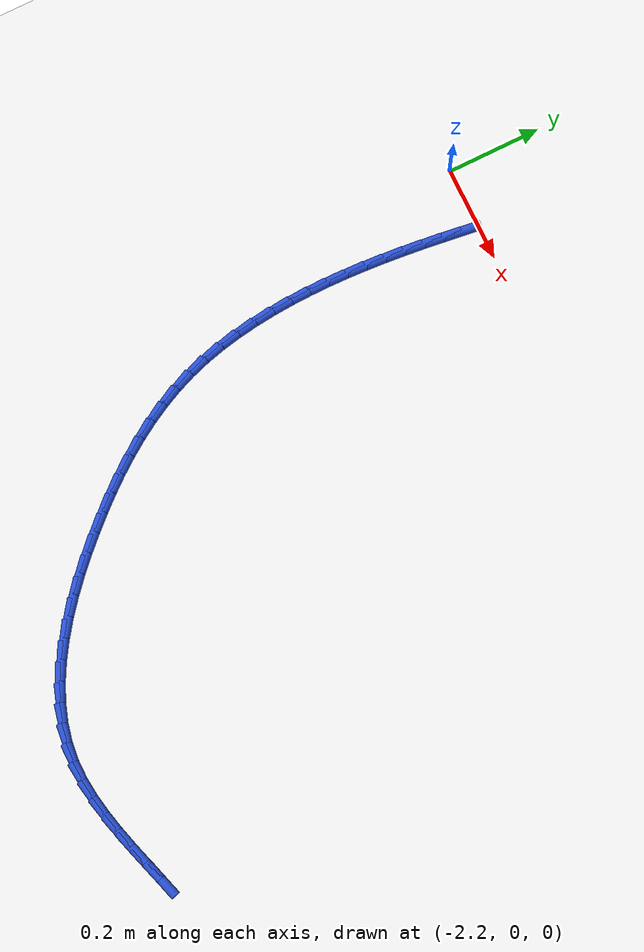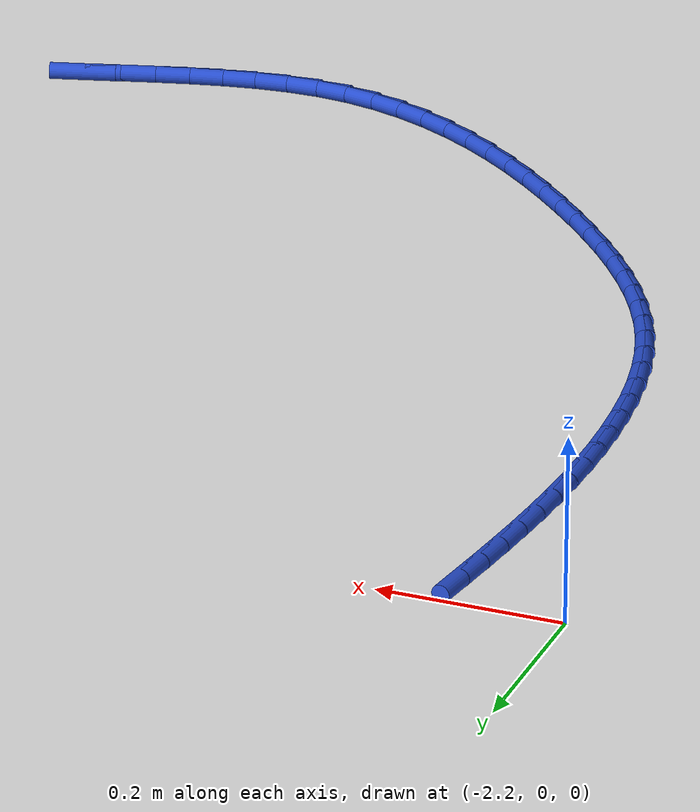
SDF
<sdf version="1.6">
 <world name="default">
  <model name="ground_plane">
   <static>1</static>
   <link name="link">
    <collision name="collision">
     <geometry><plane><normal>0 0 1</normal><size>100 100</size></plane></geometry>
     <surface><friction><ode><mu>100</mu><mu2>50</mu2></ode></friction></surface>
    </collision>
    <visual name="visual">
     <cast_shadows>0</cast_shadows>
     <geometry><plane><normal>0 0 1</normal><size>100 100</size></plane></geometry>
     <material>
      <script><uri>file://media/materials/scripts/gazebo.material</uri><name>Gazebo/WhiteGlow</name></script>
     </material>
    </visual>
   </link>
  </model>
  <model name="line">
   <link name="link_85">
    <pose>-2.0759459259021007 -0.03495912147742601 0.01 0 1.57 1.4429715660285354</pose>
    <collision name="collision">
     <geometry><cylinder><radius>0.01</radius><length>0.08</length></cylinder></geometry>
    </collision>
    <visual name="visual">
     <material>
      <script><name>Gazebo/Blue</name><uri>file://media/materials/scripts/gazebo.material</uri></script>
     </material>
     <geometry><cylinder><radius>0.01</radius><length>0.08</length></cylinder></geometry>
    </visual>
   </link>
   <link name="link_86">
    <pose>-2.081234649472552 -0.07610832968822191 0.01 0 1.57 1.4531699177430342</pose>
    <collision name="collision">
     <geometry><cylinder><radius>0.01</radius><length>0.08</length></cylinder></geometry>
    </collision>
    <visual name="visual">
     <material>
      <script><name>Gazebo/Blue</name><uri>file://media/materials/scripts/gazebo.material</uri></script>
     </material>
     <geometry><cylinder><radius>0.01</radius><length>0.08</length></cylinder></geometry>
    </visual>
   </link>
   <link name="link_87">
    <pose>-2.0860976702695737 -0.11726041376785132 0.01 0 1.57 1.4663766886337397</pose>
    <collision name="collision">
     <geometry><cylinder><radius>0.01</radius><length>0.08</length></cylinder></geometry>
    </collision>
    <visual name="visual">
     <material>
      <script><name>Gazebo/Blue</name><uri>file://media/materials/scripts/gazebo.material</uri></script>
     </material>
     <geometry><cylinder><radius>0.01</radius><length>0.08</length></cylinder></geometry>
    </visual>
   </link>
   <link name="link_88">
    <pose>-2.090412092521287 -0.15842824585336465 0.01 0 1.57 1.4825975452737543</pose>
    <collision name="collision">
     <geometry><cylinder><radius>0.01</radius><length>0.08</length></cylinder></geometry>
    </collision>
    <visual name="visual">
     <material>
      <script><name>Gazebo/Blue</name><uri>file://media/materials/scripts/gazebo.material</uri></script>
     </material>
     <geometry><cylinder><radius>0.01</radius><length>0.08</length></cylinder></geometry>
    </visual>
   </link>
   <link name="link_89">
    <pose>-2.0940550204558144 -0.1996246980818131 0.01 0 1.57 1.501830226326414</pose>
    <collision name="collision">
     <geometry><cylinder><radius>0.01</radius><length>0.08</length></cylinder></geometry>
    </collision>
    <visual name="visual">
     <material>
      <script><name>Gazebo/Blue</name><uri>file://media/materials/scripts/gazebo.material</uri></script>
     </material>
     <geometry><cylinder><radius>0.01</radius><length>0.08</length></cylinder></geometry>
    </visual>
   </link>
   <link name="link_90">
    <pose>-2.096903558301279 -0.24086264259024567 0.01 0 1.57 1.5240601257181803</pose>
    <collision name="collision">
     <geometry><cylinder><radius>0.01</radius><length>0.08</length></cylinder></geometry>
    </collision>
    <visual name="visual">
     <material>
      <script><name>Gazebo/Blue</name><uri>file://media/materials/scripts/gazebo.material</uri></script>
     </material>
     <geometry><cylinder><radius>0.01</radius><length>0.08</length></cylinder></geometry>
    </visual>
   </link>
   <link name="link_91">
    <pose>-2.098834810285803 -0.28215495151571346 0.01 0 1.57 1.5492551683550988</pose>
    <collision name="collision">
     <geometry><cylinder><radius>0.01</radius><length>0.08</length></cylinder></geometry>
    </collision>
    <visual name="visual">
     <material>
      <script><name>Gazebo/Blue</name><uri>file://media/materials/scripts/gazebo.material</uri></script>
     </material>
     <geometry><cylinder><radius>0.01</radius><length>0.08</length></cylinder></geometry>
    </visual>
   </link>
   <link name="link_92">
    <pose>-2.099725880637509 -0.3235144969952671 0.01 0 1.57 -1.564232489522545</pose>
    <collision name="collision">
     <geometry><cylinder><radius>0.01</radius><length>0.08</length></cylinder></geometry>
    </collision>
    <visual name="visual">
     <material>
      <script><name>Gazebo/Blue</name><uri>file://media/materials/scripts/gazebo.material</uri></script>
     </material>
     <geometry><cylinder><radius>0.01</radius><length>0.08</length></cylinder></geometry>
    </visual>
   </link>
   <link name="link_93">
    <pose>-2.0994538735845185 -0.3649541511659569 0.01 0 1.57 -1.5333017139982261</pose>
    <collision name="collision">
     <geometry><cylinder><radius>0.01</radius><length>0.08</length></cylinder></geometry>
    </collision>
    <visual name="visual">
     <material>
      <script><name>Gazebo/Blue</name><uri>file://media/materials/scripts/gazebo.material</uri></script>
     </material>
     <geometry><cylinder><radius>0.01</radius><length>0.08</length></cylinder></geometry>
    </visual>
   </link>
   <link name="link_94">
    <pose>-2.0978958933549556 -0.40648678616483436 0.01 0 1.57 -1.4995653418107655</pose>
    <collision name="collision">
     <geometry><cylinder><radius>0.01</radius><length>0.08</length></cylinder></geometry>
    </collision>
    <visual name="visual">
     <material>
      <script><name>Gazebo/Blue</name><uri>file://media/materials/scripts/gazebo.material</uri></script>
     </material>
     <geometry><cylinder><radius>0.01</radius><length>0.08</length></cylinder></geometry>
    </visual>
   </link>
   <link name="link_95">
    <pose>-2.0949257542148065 -0.4481135317558198 0.01 0 1.57 -1.461850985884746</pose>
    <collision name="collision">
     <geometry><cylinder><radius>0.01</radius><length>0.08</length></cylinder></geometry>
    </collision>
    <visual name="visual">
     <material>
      <script><name>Gazebo/Blue</name><uri>file://media/materials/scripts/gazebo.material</uri></script>
     </material>
     <geometry><cylinder><radius>0.01</radius><length>0.08</length></cylinder></geometry>
    </visual>
   </link>
   <link name="link_96">
    <pose>-2.090377712195463 -0.48969432837239396 0.01 0 1.57 -1.4190037425827233</pose>
    <collision name="collision">
     <geometry><cylinder><radius>0.01</radius><length>0.08</length></cylinder></geometry>
    </collision>
    <visual name="visual">
     <material>
      <script><name>Gazebo/Blue</name><uri>file://media/materials/scripts/gazebo.material</uri></script>
     </material>
     <geometry><cylinder><radius>0.01</radius><length>0.08</length></cylinder></geometry>
    </visual>
   </link>
   <link name="link_97">
    <pose>-2.084059864550111 -0.5309957518068278 0.01 0 1.57 -1.370511517928132</pose>
    <collision name="collision">
     <geometry><cylinder><radius>0.01</radius><length>0.08</length></cylinder></geometry>
    </collision>
    <visual name="visual">
     <material>
      <script><name>Gazebo/Blue</name><uri>file://media/materials/scripts/gazebo.material</uri></script>
     </material>
     <geometry><cylinder><radius>0.01</radius><length>0.08</length></cylinder></geometry>
    </visual>
   </link>
   <link name="link_98">
    <pose>-2.0757798430028362 -0.5717827163075342 0.01 0 1.57 -1.315847348142498</pose>
    <collision name="collision">
     <geometry><cylinder><radius>0.01</radius><length>0.08</length></cylinder></geometry>
    </collision>
    <visual name="visual">
     <material>
      <script><name>Gazebo/Blue</name><uri>file://media/materials/scripts/gazebo.material</uri></script>
     </material>
     <geometry><cylinder><radius>0.01</radius><length>0.08</length></cylinder></geometry>
    </visual>
   </link>
   <link name="link_99">
    <pose>-2.065345279277726 -0.6118201361229267 0.01 0 1.57 -1.2545188756909045</pose>
    <collision name="collision">
     <geometry><cylinder><radius>0.01</radius><length>0.08</length></cylinder></geometry>
    </collision>
    <visual name="visual">
     <material>
      <script><name>Gazebo/Blue</name><uri>file://media/materials/scripts/gazebo.material</uri></script>
     </material>
     <geometry><cylinder><radius>0.01</radius><length>0.08</length></cylinder></geometry>
    </visual>
   </link>
   <link name="link_100">
    <pose>-2.0525645168437685 -0.650873612082551 0.01 0 1.57 -1.1893075918681044</pose>
    <collision name="collision">
     <geometry><cylinder><radius>0.01</radius><length>0.08</length></cylinder></geometry>
    </collision>
    <visual name="visual">
     <material>
      <script><name>Gazebo/Blue</name><uri>file://media/materials/scripts/gazebo.material</uri></script>
     </material>
     <geometry><cylinder><radius>0.01</radius><length>0.08</length></cylinder></geometry>
    </visual>
   </link>
   <link name="link_101">
    <pose>-2.0373478727783203 -0.6888071133437073 0.01 0 1.57 -1.12694426555533</pose>
    <collision name="collision">
     <geometry><cylinder><radius>0.01</radius><length>0.08</length></cylinder></geometry>
    </collision>
    <visual name="visual">
     <material>
      <script><name>Gazebo/Blue</name><uri>file://media/materials/scripts/gazebo.material</uri></script>
     </material>
     <geometry><cylinder><radius>0.01</radius><length>0.08</length></cylinder></geometry>
    </visual>
   </link>
   <link name="link_102">
    <pose>-2.019812868827195 -0.725684488003593 0.01 0 1.57 -1.0687966029367555</pose>
    <collision name="collision">
     <geometry><cylinder><radius>0.01</radius><length>0.08</length></cylinder></geometry>
    </collision>
    <visual name="visual">
     <material>
      <script><name>Gazebo/Blue</name><uri>file://media/materials/scripts/gazebo.material</uri></script>
     </material>
     <geometry><cylinder><radius>0.01</radius><length>0.08</length></cylinder></geometry>
    </visual>
   </link>
   <link name="link_103">
    <pose>-2.0001021630021807 -0.7615938317317879 0.01 0 1.57 -1.0152746016147878</pose>
    <collision name="collision">
     <geometry><cylinder><radius>0.01</radius><length>0.08</length></cylinder></geometry>
    </collision>
    <visual name="visual">
     <material>
      <script><name>Gazebo/Blue</name><uri>file://media/materials/scripts/gazebo.material</uri></script>
     </material>
     <geometry><cylinder><radius>0.01</radius><length>0.08</length></cylinder></geometry>
    </visual>
   </link>
   <link name="link_104">
    <pose>-1.9783584133150642 -0.7966232401978701 0.01 0 1.57 -0.9666112911709851</pose>
    <collision name="collision">
     <geometry><cylinder><radius>0.01</radius><length>0.08</length></cylinder></geometry>
    </collision>
    <visual name="visual">
     <material>
      <script><name>Gazebo/Blue</name><uri>file://media/materials/scripts/gazebo.material</uri></script>
     </material>
     <geometry><cylinder><radius>0.01</radius><length>0.08</length></cylinder></geometry>
    </visual>
   </link>
   <link name="link_105">
    <pose>-1.954724277777634 -0.8308608090714177 0.01 0 1.57 -0.9228917143490526</pose>
    <collision name="collision">
     <geometry><cylinder><radius>0.01</radius><length>0.08</length></cylinder></geometry>
    </collision>
    <visual name="visual">
     <material>
      <script><name>Gazebo/Blue</name><uri>file://media/materials/scripts/gazebo.material</uri></script>
     </material>
     <geometry><cylinder><radius>0.01</radius><length>0.08</length></cylinder></geometry>
    </visual>
   </link>
   <link name="link_106">
    <pose>-1.9293424144016778 -0.8643946340220098 0.01 0 1.57 -0.8840871595854837</pose>
    <collision name="collision">
     <geometry><cylinder><radius>0.01</radius><length>0.08</length></cylinder></geometry>
    </collision>
    <visual name="visual">
     <material>
      <script><name>Gazebo/Blue</name><uri>file://media/materials/scripts/gazebo.material</uri></script>
     </material>
     <geometry><cylinder><radius>0.01</radius><length>0.08</length></cylinder></geometry>
    </visual>
   </link>
   <link name="link_107">
    <pose>-1.9023554811989831 -0.8973128107192248 0.01 0 1.57 -0.8500888541328554</pose>
    <collision name="collision">
     <geometry><cylinder><radius>0.01</radius><length>0.08</length></cylinder></geometry>
    </collision>
    <visual name="visual">
     <material>
      <script><name>Gazebo/Blue</name><uri>file://media/materials/scripts/gazebo.material</uri></script>
     </material>
     <geometry><cylinder><radius>0.01</radius><length>0.08</length></cylinder></geometry>
    </visual>
   </link>
   <link name="link_108">
    <pose>-1.873906136181339 -0.9297034348326422 0.01 0 1.57 -0.8206850880190047</pose>
    <collision name="collision">
     <geometry><cylinder><radius>0.01</radius><length>0.08</length></cylinder></geometry>
    </collision>
    <visual name="visual">
     <material>
      <script><name>Gazebo/Blue</name><uri>file://media/materials/scripts/gazebo.material</uri></script>
     </material>
     <geometry><cylinder><radius>0.01</radius><length>0.08</length></cylinder></geometry>
    </visual>
   </link>
   <link name="link_109">
    <pose>-1.8441366071570893 -0.9616516993572874 0.01 0 1.57 -0.7924468188744641</pose>
    <collision name="collision">
     <geometry><cylinder><radius>0.01</radius><length>0.08</length></cylinder></geometry>
    </collision>
    <visual name="visual">
     <material>
      <script><name>Gazebo/Blue</name><uri>file://media/materials/scripts/gazebo.material</uri></script>
     </material>
     <geometry><cylinder><radius>0.01</radius><length>0.08</length></cylinder></geometry>
    </visual>
   </link>
   <link name="link_110">
    <pose>-1.8131628081549598 -0.993065252594348 0.01 0 1.57 -0.7599471058321466</pose>
    <collision name="collision">
     <geometry><cylinder><radius>0.01</radius><length>0.08</length></cylinder></geometry>
    </collision>
    <visual name="visual">
     <material>
      <script><name>Gazebo/Blue</name><uri>file://media/materials/scripts/gazebo.material</uri></script>
     </material>
     <geometry><cylinder><radius>0.01</radius><length>0.08</length></cylinder></geometry>
    </visual>
   </link>
   <link name="link_111">
    <pose>-1.7810595757963186 -1.0235745848001148 0.01 0 1.57 -0.7221559695129879</pose>
    <collision name="collision">
     <geometry><cylinder><radius>0.01</radius><length>0.08</length></cylinder></geometry>
    </collision>
    <visual name="visual">
     <material>
      <script><name>Gazebo/Blue</name><uri>file://media/materials/scripts/gazebo.material</uri></script>
     </material>
     <geometry><cylinder><radius>0.01</radius><length>0.08</length></cylinder></geometry>
    </visual>
   </link>
   <link name="link_112">
    <pose>-1.7478981789248766 -1.0527861136726644 0.01 0 1.57 -0.6783287721434816</pose>
    <collision name="collision">
     <geometry><cylinder><radius>0.01</radius><length>0.08</length></cylinder></geometry>
    </collision>
    <visual name="visual">
     <material>
      <script><name>Gazebo/Blue</name><uri>file://media/materials/scripts/gazebo.material</uri></script>
     </material>
     <geometry><cylinder><radius>0.01</radius><length>0.08</length></cylinder></geometry>
    </visual>
   </link>
   <link name="link_113">
    <pose>-1.7137498863843434 -1.0803062569100734 0.01 0 1.57 -0.6275667458564074</pose>
    <collision name="collision">
     <geometry><cylinder><radius>0.01</radius><length>0.08</length></cylinder></geometry>
    </collision>
    <visual name="visual">
     <material>
      <script><name>Gazebo/Blue</name><uri>file://media/materials/scripts/gazebo.material</uri></script>
     </material>
     <geometry><cylinder><radius>0.01</radius><length>0.08</length></cylinder></geometry>
    </visual>
   </link>
   <link name="link_114">
    <pose>-1.6786859670184304 -1.105741432210417 0.01 0 1.57 -0.5688255984747911</pose>
    <collision name="collision">
     <geometry><cylinder><radius>0.01</radius><length>0.08</length></cylinder></geometry>
    </collision>
    <visual name="visual">
     <material>
      <script><name>Gazebo/Blue</name><uri>file://media/materials/scripts/gazebo.material</uri></script>
     </material>
     <geometry><cylinder><radius>0.01</radius><length>0.08</length></cylinder></geometry>
    </visual>
   </link>
   <link name="link_115">
    <pose>-1.6427776896708466 -1.1286980572717724 0.01 0 1.57 -0.5009520936265446</pose>
    <collision name="collision">
     <geometry><cylinder><radius>0.01</radius><length>0.08</length></cylinder></geometry>
    </collision>
    <visual name="visual">
     <material>
      <script><name>Gazebo/Blue</name><uri>file://media/materials/scripts/gazebo.material</uri></script>
     </material>
     <geometry><cylinder><radius>0.01</radius><length>0.08</length></cylinder></geometry>
    </visual>
   </link>
   <link name="link_116">
    <pose>-1.6060963231853038 -1.1487825497922142 0.01 0 1.57 -0.4227725859736441</pose>
    <collision name="collision">
     <geometry><cylinder><radius>0.01</radius><length>0.08</length></cylinder></geometry>
    </collision>
    <visual name="visual">
     <material>
      <script><name>Gazebo/Blue</name><uri>file://media/materials/scripts/gazebo.material</uri></script>
     </material>
     <geometry><cylinder><radius>0.01</radius><length>0.08</length></cylinder></geometry>
    </visual>
   </link>
   <link name="link_117">
    <pose>-1.568713136405513 -1.1656013274698194 0.01 0 1.57 -0.3332649461563217</pose>
    <collision name="collision">
     <geometry><cylinder><radius>0.01</radius><length>0.08</length></cylinder></geometry>
    </collision>
    <visual name="visual">
     <material>
      <script><name>Gazebo/Blue</name><uri>file://media/materials/scripts/gazebo.material</uri></script>
     </material>
     <geometry><cylinder><radius>0.01</radius><length>0.08</length></cylinder></geometry>
    </visual>
   </link>
   <link name="link_118">
    <pose>-1.5306993981751835 -1.178760808002663 0.01 0 1.57 -0.23184212522283684</pose>
    <collision name="collision">
     <geometry><cylinder><radius>0.01</radius><length>0.08</length></cylinder></geometry>
    </collision>
    <visual name="visual">
     <material>
      <script><name>Gazebo/Blue</name><uri>file://media/materials/scripts/gazebo.material</uri></script>
     </material>
     <geometry><cylinder><radius>0.01</radius><length>0.08</length></cylinder></geometry>
    </visual>
   </link>
   <link name="link_119">
    <pose>-1.4921263773380262 -1.1878674090888222 0.01 0 1.57 -0.1188429228142989</pose>
    <collision name="collision">
     <geometry><cylinder><radius>0.01</radius><length>0.08</length></cylinder></geometry>
    </collision>
    <visual name="visual">
     <material>
      <script><name>Gazebo/Blue</name><uri>file://media/materials/scripts/gazebo.material</uri></script>
     </material>
     <geometry><cylinder><radius>0.01</radius><length>0.08</length></cylinder></geometry>
    </visual>
   </link>
   <link name="link_120">
    <pose>-1.4530651878630527 -1.1925315338579283 0.01 0 1.57 -0.005010415488048457</pose>
    <collision name="collision">
     <geometry><cylinder><radius>0.01</radius><length>0.08</length></cylinder></geometry>
    </collision>
    <visual name="visual">
     <material>
      <script><name>Gazebo/Blue</name><uri>file://media/materials/scripts/gazebo.material</uri></script>
     </material>
     <geometry><cylinder><radius>0.01</radius><length>0.08</length></cylinder></geometry>
    </visual>
   </link>
   <link name="link_121">
    <pose>-1.4135727277338783 -1.1927294091476612 0.01 0 1.57 0.09091874795231573</pose>
    <collision name="collision">
     <geometry><cylinder><radius>0.01</radius><length>0.08</length></cylinder></geometry>
    </collision>
    <visual name="visual">
     <material>
      <script><name>Gazebo/Blue</name><uri>file://media/materials/scripts/gazebo.material</uri></script>
     </material>
     <geometry><cylinder><radius>0.01</radius><length>0.08</length></cylinder></geometry>
    </visual>
   </link>
   <link name="link_122">
    <pose>-1.3736804351573573 -1.189092424957774 0.01 0 1.57 0.1666419655722647</pose>
    <collision name="collision">
     <geometry><cylinder><radius>0.01</radius><length>0.08</length></cylinder></geometry>
    </collision>
    <visual name="visual">
     <material>
      <script><name>Gazebo/Blue</name><uri>file://media/materials/scripts/gazebo.material</uri></script>
     </material>
     <geometry><cylinder><radius>0.01</radius><length>0.08</length></cylinder></geometry>
    </visual>
   </link>
   <link name="link_123">
    <pose>-1.3334171024305441 -1.1823200591838117 0.01 0 1.57 0.2230018388174958</pose>
    <collision name="collision">
     <geometry><cylinder><radius>0.01</radius><length>0.08</length></cylinder></geometry>
    </collision>
    <visual name="visual">
     <material>
      <script><name>Gazebo/Blue</name><uri>file://media/materials/scripts/gazebo.material</uri></script>
     </material>
     <geometry><cylinder><radius>0.01</radius><length>0.08</length></cylinder></geometry>
    </visual>
   </link>
   <link name="link_124">
    <pose>-1.2928115218504963 -1.1731117897213201 0.01 0 1.57 0.261354081242633</pose>
    <collision name="collision">
     <geometry><cylinder><radius>0.01</radius><length>0.08</length></cylinder></geometry>
    </collision>
    <visual name="visual">
     <material>
      <script><name>Gazebo/Blue</name><uri>file://media/materials/scripts/gazebo.material</uri></script>
     </material>
     <geometry><cylinder><radius>0.01</radius><length>0.08</length></cylinder></geometry>
    </visual>
   </link>
   <link name="link_125">
    <pose>-1.25189248571427 -1.1621670944658449 0.01 0 1.57 0.28298641720186246</pose>
    <collision name="collision">
     <geometry><cylinder><radius>0.01</radius><length>0.08</length></cylinder></geometry>
    </collision>
    <visual name="visual">
     <material>
      <script><name>Gazebo/Blue</name><uri>file://media/materials/scripts/gazebo.material</uri></script>
     </material>
     <geometry><cylinder><radius>0.01</radius><length>0.08</length></cylinder></geometry>
    </visual>
   </link>
   <link name="link_126">
    <pose>-1.210688786318921 -1.150185451312932 0.01 0 1.57 0.28882681156795964</pose>
    <collision name="collision">
     <geometry><cylinder><radius>0.01</radius><length>0.08</length></cylinder></geometry>
    </collision>
    <visual name="visual">
     <material>
      <script><name>Gazebo/Blue</name><uri>file://media/materials/scripts/gazebo.material</uri></script>
     </material>
     <geometry><cylinder><radius>0.01</radius><length>0.08</length></cylinder></geometry>
    </visual>
   </link>
   <link name="link_127">
    <pose>-1.1692292159615083 -1.1378663381581278 0.01 0 1.57 0.27933360645101</pose>
    <collision name="collision">
     <geometry><cylinder><radius>0.01</radius><length>0.08</length></cylinder></geometry>
    </collision>
    <visual name="visual">
     <material>
      <script><name>Gazebo/Blue</name><uri>file://media/materials/scripts/gazebo.material</uri></script>
     </material>
     <geometry><cylinder><radius>0.01</radius><length>0.08</length></cylinder></geometry>
    </visual>
   </link>
  </model>
 </world>
</sdf>
